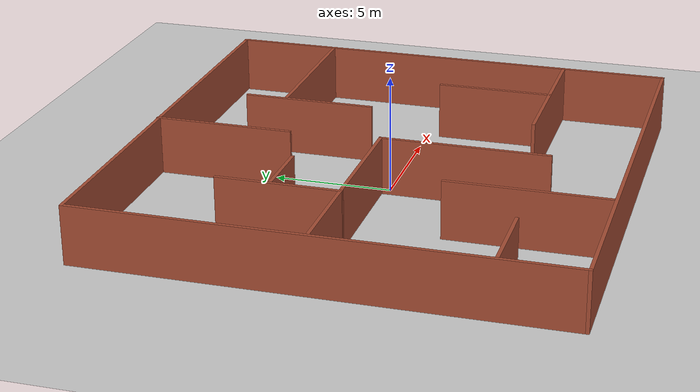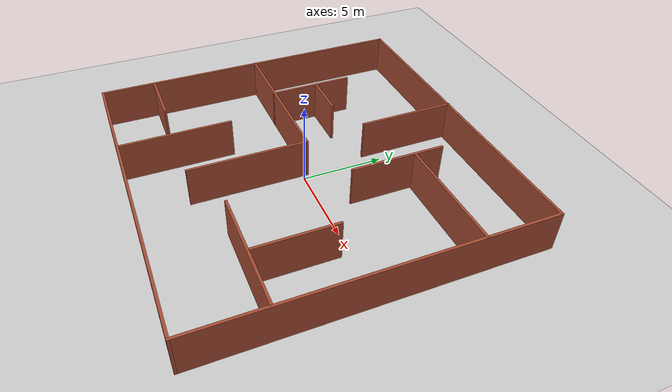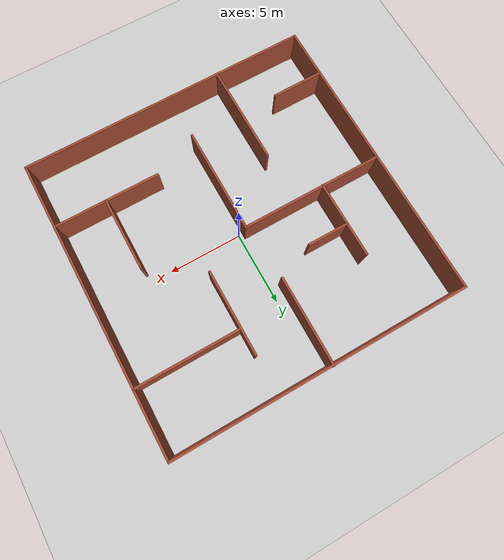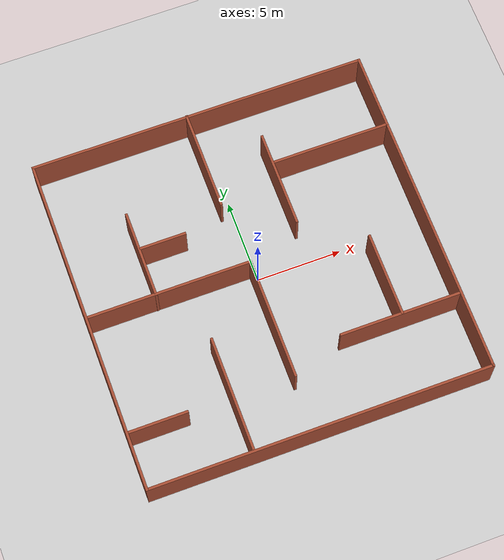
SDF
<sdf version="1.6">
 <world name="default">
  <light name="sun" type="directional">
   <pose>0 0 10 0 -0 0</pose>
   <diffuse>0.8 0.8 0.8 1</diffuse>
   <specular>0.2 0.2 0.2 1</specular>
   <attenuation>
    <range>1000</range>
    <constant>0.9</constant>
    <linear>0.01</linear>
    <quadratic>0.001</quadratic>
   </attenuation>
   <direction>-0.5 0.1 -0.9</direction>
  </light>
  <model name="ground_plane">
   <static>1</static>
   <link name="link">
    <collision name="collision">
     <geometry><plane><normal>0 0 1</normal><size>100 100</size></plane></geometry>
     <surface><friction><ode><mu>100</mu><mu2>50</mu2></ode></friction></surface>
    </collision>
    <visual name="visual">
     <cast_shadows>0</cast_shadows>
     <geometry><plane><normal>0 0 1</normal><size>100 100</size></plane></geometry>
     <material>
      <script><uri>file://media/materials/scripts/gazebo.material</uri><name>Gazebo/Grey</name></script>
     </material>
    </visual>
   </link>
  </model>
  <gravity>0 0 -9.8</gravity>
  <magnetic_field>6e-06 2.3e-05 -4.2e-05</magnetic_field>
  <atmosphere type="adiabatic"/>
  <physics name="default_physics" default="0" type="ode">
   <max_step_size>0.004</max_step_size>
   <real_time_factor>1</real_time_factor>
   <real_time_update_rate>250</real_time_update_rate>
  </physics>
  <scene><ambient>0.4 0.4 0.4 1</ambient><background>0.7 0.7 0.7 1</background><shadows>1</shadows></scene>
  <spherical_coordinates>
   <surface_model>EARTH_WGS84</surface_model>
   <latitude_deg>0</latitude_deg>
   <longitude_deg>0</longitude_deg>
   <elevation>0</elevation>
   <heading_deg>0</heading_deg>
  </spherical_coordinates>
  <model name="Untitled">
   <pose>0 0.016167 0 0 -0 0</pose>
   <link name="Wall_0">
    <collision name="Wall_0_Collision">
     <geometry><box><size>20.15 0.15 2.5</size></box></geometry>
     <pose>0 0 1.25 0 -0 0</pose>
    </collision>
    <visual name="Wall_0_Visual">
     <pose>0 0 1.25 0 -0 0</pose>
     <geometry><box><size>20.15 0.15 2.5</size></box></geometry>
     <material>
      <script><uri>file://media/materials/scripts/gazebo.material</uri><name>Gazebo/Bricks</name></script>
      <ambient>1 1 1 1</ambient>
     </material>
     <meta><layer>0</layer></meta>
    </visual>
    <pose>0 9.98383 0 0 -0 0</pose>
   </link>
   <link name="Wall_1">
    <collision name="Wall_1_Collision">
     <geometry><box><size>20.15 0.15 2.5</size></box></geometry>
     <pose>0 0 1.25 0 -0 0</pose>
    </collision>
    <visual name="Wall_1_Visual">
     <pose>0 0 1.25 0 -0 0</pose>
     <geometry><box><size>20.15 0.15 2.5</size></box></geometry>
     <material>
      <script><uri>file://media/materials/scripts/gazebo.material</uri><name>Gazebo/Bricks</name></script>
      <ambient>1 1 1 1</ambient>
     </material>
     <meta><layer>0</layer></meta>
    </visual>
    <pose>10 -0.016167 0 0 -0 -1.5708</pose>
   </link>
   <link name="Wall_10">
    <collision name="Wall_10_Collision">
     <geometry><box><size>3.5 0.15 2.5</size></box></geometry>
     <pose>0 0 1.25 0 -0 0</pose>
    </collision>
    <visual name="Wall_10_Visual">
     <pose>0 0 1.25 0 -0 0</pose>
     <geometry><box><size>3.5 0.15 2.5</size></box></geometry>
     <material>
      <script><uri>file://media/materials/scripts/gazebo.material</uri><name>Gazebo/Bricks</name></script>
      <ambient>1 1 1 1</ambient>
     </material>
     <meta><layer>0</layer></meta>
    </visual>
    <pose>-8.23061 -6.70128 0 0 -0 0</pose>
   </link>
   <link name="Wall_14">
    <collision name="Wall_14_Collision">
     <geometry><box><size>7.25 0.15 2.5</size></box></geometry>
     <pose>0 0 1.25 0 -0 0</pose>
    </collision>
    <visual name="Wall_14_Visual">
     <pose>0 0 1.25 0 -0 0</pose>
     <geometry><box><size>7.25 0.15 2.5</size></box></geometry>
     <material>
      <script><uri>file://media/materials/scripts/gazebo.material</uri><name>Gazebo/Bricks</name></script>
      <ambient>1 1 1 1</ambient>
     </material>
     <meta><layer>0</layer></meta>
    </visual>
    <pose>6.40807 -5.48762 0 0 -0 3.14159</pose>
   </link>
   <link name="Wall_16">
    <collision name="Wall_16_Collision">
     <geometry><box><size>5 0.15 2.5</size></box></geometry>
     <pose>0 0 1.25 0 -0 0</pose>
    </collision>
    <visual name="Wall_16_Visual">
     <pose>0 0 1.25 0 -0 0</pose>
     <geometry><box><size>5 0.15 2.5</size></box></geometry>
     <material>
      <script><uri>file://media/materials/scripts/gazebo.material</uri><name>Gazebo/Bricks</name></script>
      <ambient>1 1 1 1</ambient>
     </material>
     <meta><layer>0</layer></meta>
    </visual>
    <pose>6.47889 -3.02216 0 0 -0 1.5708</pose>
   </link>
   <link name="Wall_18">
    <collision name="Wall_18_Collision">
     <geometry><box><size>7 0.15 2.5</size></box></geometry>
     <pose>0 0 1.25 0 -0 0</pose>
    </collision>
    <visual name="Wall_18_Visual">
     <pose>0 0 1.25 0 -0 0</pose>
     <geometry><box><size>7 0.15 2.5</size></box></geometry>
     <material>
      <script><uri>file://media/materials/scripts/gazebo.material</uri><name>Gazebo/Bricks</name></script>
      <ambient>1 1 1 1</ambient>
     </material>
     <meta><layer>0</layer></meta>
    </visual>
    <pose>6.53307 5.55676 0 0 -0 3.14159</pose>
   </link>
   <link name="Wall_2">
    <collision name="Wall_2_Collision">
     <geometry><box><size>20.15 0.15 2.5</size></box></geometry>
     <pose>0 0 1.25 0 -0 0</pose>
    </collision>
    <visual name="Wall_2_Visual">
     <pose>0 0 1.25 0 -0 0</pose>
     <geometry><box><size>20.15 0.15 2.5</size></box></geometry>
     <material>
      <script><uri>file://media/materials/scripts/gazebo.material</uri><name>Gazebo/Bricks</name></script>
      <ambient>1 1 1 1</ambient>
     </material>
     <meta><layer>0</layer></meta>
    </visual>
    <pose>0 -10.0162 0 0 -0 3.14159</pose>
   </link>
   <link name="Wall_20">
    <collision name="Wall_20_Collision">
     <geometry><box><size>5.75 0.15 2.5</size></box></geometry>
     <pose>0 0 1.25 0 -0 0</pose>
    </collision>
    <visual name="Wall_20_Visual">
     <pose>0 0 1.25 0 -0 0</pose>
     <geometry><box><size>5.75 0.15 2.5</size></box></geometry>
     <material>
      <script><uri>file://media/materials/scripts/gazebo.material</uri><name>Gazebo/Bricks</name></script>
      <ambient>1 1 1 1</ambient>
     </material>
     <meta><layer>0</layer></meta>
    </visual>
    <pose>2.95926 4.49635 0 0 -0 -1.5708</pose>
   </link>
   <link name="Wall_22">
    <collision name="Wall_22_Collision">
     <geometry><box><size>6 0.15 2.5</size></box></geometry>
     <pose>0 0 1.25 0 -0 0</pose>
    </collision>
    <visual name="Wall_22_Visual">
     <pose>0 0 1.25 0 -0 0</pose>
     <geometry><box><size>6 0.15 2.5</size></box></geometry>
     <material>
      <script><uri>file://media/materials/scripts/gazebo.material</uri><name>Gazebo/Bricks</name></script>
      <ambient>1 1 1 1</ambient>
     </material>
     <meta><layer>0</layer></meta>
    </visual>
    <pose>-0.685123 7.09117 0 0 -0 -1.5708</pose>
   </link>
   <link name="Wall_24">
    <collision name="Wall_24_Collision">
     <geometry><box><size>5.25 0.15 2.5</size></box></geometry>
     <pose>0 0 1.25 0 -0 0</pose>
    </collision>
    <visual name="Wall_24_Visual">
     <pose>0 0 1.25 0 -0 0</pose>
     <geometry><box><size>5.25 0.15 2.5</size></box></geometry>
     <material>
      <script><uri>file://media/materials/scripts/gazebo.material</uri><name>Gazebo/Bricks</name></script>
      <ambient>1 1 1 1</ambient>
     </material>
     <meta><layer>0</layer></meta>
    </visual>
    <pose>-5.92837 2.82871 0 0 -0 1.5708</pose>
   </link>
   <link name="Wall_26">
    <collision name="Wall_26_Collision">
     <geometry><box><size>2.75 0.15 2.5</size></box></geometry>
     <pose>0 0 1.25 0 -0 0</pose>
    </collision>
    <visual name="Wall_26_Visual">
     <pose>0 0 1.25 0 -0 0</pose>
     <geometry><box><size>2.75 0.15 2.5</size></box></geometry>
     <material>
      <script><uri>file://media/materials/scripts/gazebo.material</uri><name>Gazebo/Bricks</name></script>
      <ambient>1 1 1 1</ambient>
     </material>
     <meta><layer>0</layer></meta>
    </visual>
    <pose>-4.52136 3.16785 0 0 -0 0</pose>
   </link>
   <link name="Wall_3">
    <collision name="Wall_3_Collision">
     <geometry><box><size>20.15 0.15 2.5</size></box></geometry>
     <pose>0 0 1.25 0 -0 0</pose>
    </collision>
    <visual name="Wall_3_Visual">
     <pose>0 0 1.25 0 -0 0</pose>
     <geometry><box><size>20.15 0.15 2.5</size></box></geometry>
     <material>
      <script><uri>file://media/materials/scripts/gazebo.material</uri><name>Gazebo/Bricks</name></script>
      <ambient>1 1 1 1</ambient>
     </material>
     <meta><layer>0</layer></meta>
    </visual>
    <pose>-10 -0.016167 0 0 -0 1.5708</pose>
   </link>
   <link name="Wall_5">
    <collision name="Wall_5_Collision">
     <geometry><box><size>9.76148 0.15 2.5</size></box></geometry>
     <pose>0 0 1.25 0 -0 0</pose>
    </collision>
    <visual name="Wall_5_Visual">
     <pose>0 0 1.25 0 -0 0</pose>
     <geometry><box><size>9.76148 0.15 2.5</size></box></geometry>
     <material>
      <script><uri>file://media/materials/scripts/gazebo.material</uri><name>Gazebo/Bricks</name></script>
      <ambient>1 1 1 1</ambient>
     </material>
     <meta><layer>0</layer></meta>
    </visual>
    <pose>-5.1405 0.297833 0 0 -0 0</pose>
   </link>
   <link name="Wall_6">
    <collision name="Wall_6_Collision">
     <geometry><box><size>7.25 0.15 2.5</size></box></geometry>
     <pose>0 0 1.25 0 -0 0</pose>
    </collision>
    <visual name="Wall_6_Visual">
     <pose>0 0 1.25 0 -0 0</pose>
     <geometry><box><size>7.25 0.15 2.5</size></box></geometry>
     <material>
      <script><uri>file://media/materials/scripts/gazebo.material</uri><name>Gazebo/Bricks</name></script>
      <ambient>1 1 1 1</ambient>
     </material>
     <meta><layer>0</layer></meta>
    </visual>
    <pose>-0.335 -3.25217 0 0 -0 -1.5708</pose>
   </link>
   <link name="Wall_8">
    <collision name="Wall_8_Collision">
     <geometry><box><size>6.75 0.15 2.5</size></box></geometry>
     <pose>0 0 1.25 0 -0 0</pose>
    </collision>
    <visual name="Wall_8_Visual">
     <pose>0 0 1.25 0 -0 0</pose>
     <geometry><box><size>6.75 0.15 2.5</size></box></geometry>
     <material>
      <script><uri>file://media/materials/scripts/gazebo.material</uri><name>Gazebo/Bricks</name></script>
      <ambient>1 1 1 1</ambient>
     </material>
     <meta><layer>0</layer></meta>
    </visual>
    <pose>-3.91819 -6.56256 0 0 -0 -1.5708</pose>
   </link>
   <static>1</static>
  </model>
 </world>
</sdf>
